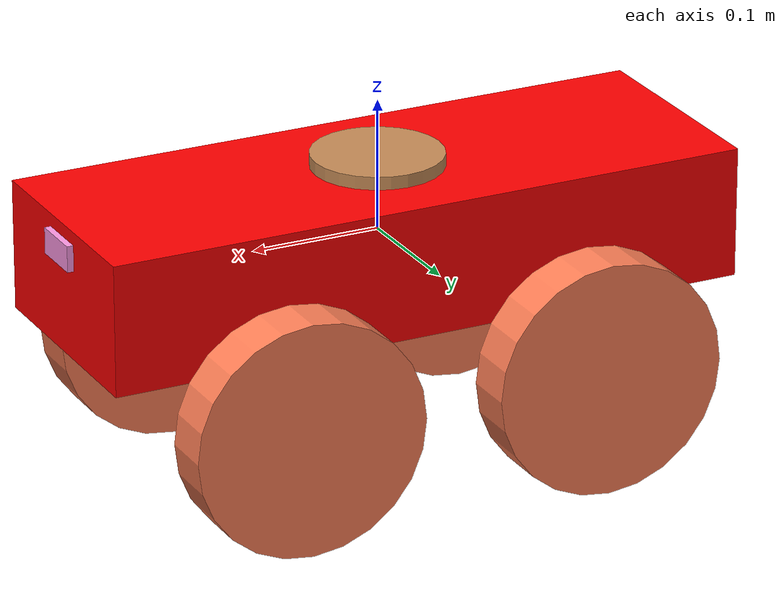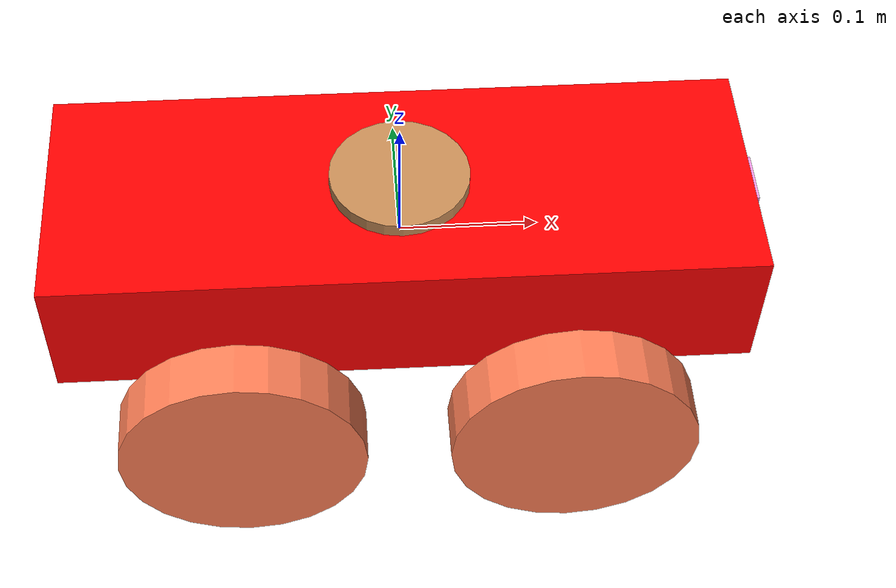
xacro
<?xml version="1.1"?>
<robot xmlns:xacro="http://ros.org/wiki/xacro" name="four_wheels_robot">

    <xacro:property name="wheel_radius" value="0.090"/>
    <xacro:property name="wheel_length" value="0.04"/>

    <!-- Include control definitions -->
    <xacro:include filename="$(find four_wheels_robot)/urdf/sensors.xacro"/>

    <xacro:macro name="wheel" params="prefix">
        <link name="${prefix}_wheel">
            <inertial>

                <mass value="0.2"/>
                <inertia ixx="0.000432" ixy="0.0" ixz="0.0" iyy="0.00081" iyz="0.0" izz="0.000432"/>
            </inertial>
            <visual>
                <origin xyz="0.0 0.0 0.0" rpy="1.57 0.0 0.0"/>
                <geometry>
                    <cylinder radius="${wheel_radius}" length="${wheel_length}"/>
                </geometry>
                <material name="">
                    <color rgba="1.0 0.5 0.34 1.0"/>
                </material>
            </visual>
            <collision>
             <origin xyz="0.0 0.0 0.0" rpy="1.57 0.0 0.0"/>
                <geometry>
                    <cylinder radius="${wheel_radius}" length="${wheel_length}"/>
                </geometry>
            </collision>
        </link>
    </xacro:macro>

    <xacro:wheel prefix="front_left" />
    <xacro:wheel prefix="front_right"/>
    <xacro:wheel prefix="back_left"/>
    <xacro:wheel prefix="back_right" />

    <!-- Chassis -->
    <link name="base_link">
        <inertial>
            <origin xyz="0.0 0.0 0.0" rpy="0.0 0.0 0.0"/>
            <mass value="10.0"/>
            <inertia ixx="0.03157" ixy="0.0" ixz="0.0" iyy="0.21667" iyz="0.0" izz="0.24013"/>
        </inertial>
        <visual>
            <origin xyz="0.0 0.0 0.0" rpy="0.0 0.0 0.0"/>
            <geometry>
                <box size="0.5 0.18 0.1"/>
            </geometry>
            <material name="">
                <color rgba="1.0 0.0 0.0 1.0"/>
            </material>
        </visual>
        <collision>
            <origin xyz="0.0 0.0 0.0" rpy="0.0 0.0 0.0"/>
            <geometry>
                <box size="0.5 0.18 0.1"/>
            </geometry>
        </collision>
    </link>
    <link name="base_footprint"></link>

    <joint name="base_joint" type="fixed">
        <origin xyz="0.0 0.0 0.0" rpy="0.0 0.0 0.0"/>
        <parent link="base_footprint"/>
        <child link="base_link"/>
        <axis xyz="0.0 0.0 0.02"/>
    </joint>

    <xacro:macro name="wheel_joint" params="prefix x y r">
        <joint name="${prefix}_wheel_joint" type="continuous">
            <origin xyz="${x} ${y} -${wheel_radius}" rpy="${r} 0 0"/>
            <parent link="base_link"/>
            <child link="${prefix}_wheel"/>
            <axis xyz="0 1 0"/>
            <dynamics damping="0.1" friction="0.0"/>
        </joint>
    </xacro:macro>

    <xacro:wheel_joint prefix="front_left"  x="0.12" y="0.12" r="0"/>
    <xacro:wheel_joint prefix="front_right" x="0.12" y="-0.12" r="0"/>
    <xacro:wheel_joint prefix="back_left"   x="-0.12" y="0.12" r="0"/>
    <xacro:wheel_joint prefix="back_right"  x="-0.12" y="-0.12" r="0"/>

    <!--Adding a lidar-->
    <link name="laser_link">
        <visual>
            <geometry>
                <cylinder radius="0.05" length="0.02"/>
            </geometry>
                <material name="">
                    <color rgba="0.78 0.55 0.34 1.0"/>
                </material>
        </visual>
    </link>

    <joint name="laser_joint" type="fixed">
        <origin xyz="0.0 0.0 0.05" rpy="0.0 0.0 0.0"/>
        <parent link="base_link"/>
        <child link="laser_link"/>
        <axis xyz="0.0 0.0 0.0"/>
    </joint>

    <!-- Adding IMU SENSOR-->
<link name="imu_link">
  <visual>
    <geometry>
      <box size="0.05 0.05 0.05"/>
    </geometry>
  </visual>
  <collision>
    <geometry>
      <box size="0.05 0.05 0.05"/>
    </geometry>
  </collision>
  <inertial>
    <origin xyz="0.0 0.0 0.0" rpy="0.0 0.0 0.0"/>
    <mass value="0.1"/>
    <inertia ixx="0.002" ixy="0.0" ixz="0.002" iyy="0.002" iyz="0.0" izz="0.002"/>
  </inertial>

</link>

<joint name="imu_joint" type="fixed">
  <parent link="base_link"/>
  <child link="imu_link"/>
  <origin xyz="0.0 0.0 0.005" rpy="0.0 0.0 0.0"/>
</joint>

<!-- camera link-->
 <link name="camera_link">
    <visual>
        <geometry>
            <box size="0.01 0.04 0.02"/>
        </geometry>
        <material name="">
                <color rgba="1.0 0.6 0.9 1.0"/>
            </material>
    </visual>
    <inertial>
        <origin xyz="0 0 0" rpy="0 0 0"/>
        <mass value="0.01"/>
        <inertia ixx="0.00001" ixy="0" ixz="0" iyy="0.00001" iyz="0" izz="0.00001"/>
    </inertial>
 </link>

 <joint name="camera_joint" type="fixed">
    <parent link="base_link"/>
    <child link="camera_link"/>
    <origin xyz="0.25 0.0 0.03" rpy="0 0 0"/>

 </joint>

</robot>
